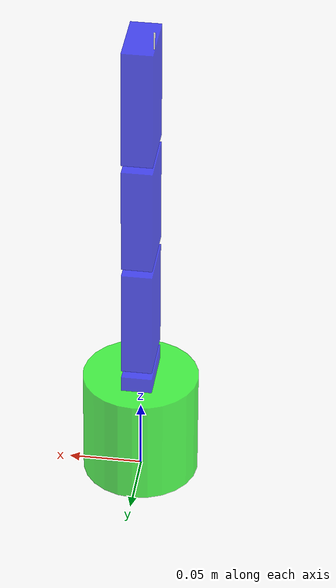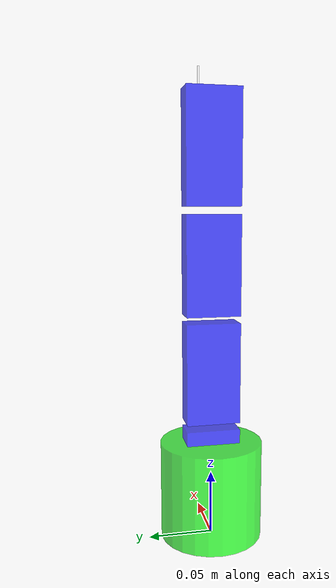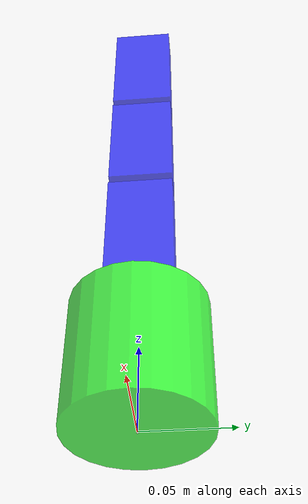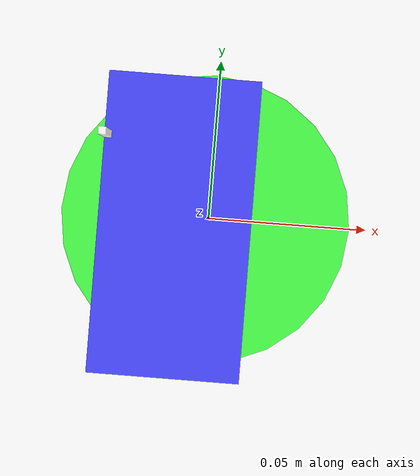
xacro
<?xml version="1.0"?>
<robot xmlns:xacro="http://www.ros.org/wiki/xacro" name="robot">
    <xacro:arg name="initial_positions_file" default="initial_positions.yaml" />

    <!-- Import robot urdf file -->
    <xacro:include filename="$(find arm_description)/description/bot_flat.urdf" />

    <!-- Import control_xacro -->
    <xacro:include filename="robot.ros2_control.xacro" />

    <xacro:robot_ros2_control name="FakeSystem" initial_positions_file="$(arg initial_positions_file)"/>

</robot>

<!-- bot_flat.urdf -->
<!-- |    This document was autogenerated by xacro from /home/kathan/Desktop/hulku_bot/src/arm_description/description/bot.urdf.xacro | -->
<!-- |    EDITING THIS FILE BY HAND IS NOT RECOMMENDED                                 | -->
<robot name="robot">
  <!-- Specify some standard inertial calculations https://en.wikipedia.org/wiki/List_of_moments_of_inertia -->
  <!-- These make use of xacro's mathematical functionality -->
  <material name="white">
    <color rgba="1 1 1 0.7"/>
  </material>
  <material name="orange">
    <color rgba="1 0.5 0 0.7"/>
  </material>
  <material name="blue">
    <color rgba="0 0 1 0.7"/>
  </material>
  <material name="green">
    <color rgba="0 1 0 0.7"/>
  </material>
  <material name="black">
    <color rgba="0 0 0 0.7"/>
  </material>
  <material name="red">
    <color rgba="1 0 0 0.7"/>
  </material>
  <!-- BASE LINK -->
  <link name="base_link">
    <visual>
      <geometry>
        <box size="0.001 0.001 0.001"/>
      </geometry>
      <material name="white"/>
    </visual>
  </link>
  <!-- base footprint -->
  <joint name="base_footprint_joint" type="fixed">
    <parent link="base_link"/>
    <child link="base_footprint"/>
    <origin rpy="0 0 0" xyz="0 0 0"/>
  </joint>
  <link name="base_footprint">
    <visual>
      <geometry>
        <box size="0.001 0.001 0.001"/>
      </geometry>
      <material name="white"/>
    </visual>
  </link>
  <!-- base cylinder -->
  <joint name="base_cylinder_joint" type="fixed">
    <parent link="base_link"/>
    <child link="base_cylinder"/>
    <origin rpy="0 0 0" xyz="0 0 0.104"/>
  </joint>
  <link name="base_cylinder">
    <visual>
      <origin rpy="0 0 0" xyz="0 0 -0.0655"/>
      <geometry>
        <cylinder length="0.077" radius="0.040"/>
      </geometry>
      <material name="green"/>
    </visual>
    <collision>
      <origin rpy="0 0 0" xyz="0 0 -0.0655"/>
      <geometry>
        <cylinder length="0.077" radius="0.040"/>
      </geometry>
      <material name="green"/>
    </collision>
    <inertial>
      <origin rpy="0 0 0" xyz="0 0 -0.0655"/>
      <mass value="0.1"/>
      <inertia ixx="8.940833333333333e-05" ixy="0.0" ixz="0.0" iyy="8.940833333333333e-05" iyz="0.0" izz="8e-05"/>
    </inertial>
  </link>
  <!-- link 1 -->
  <joint name="link_1_joint" type="revolute">
    <parent link="base_cylinder"/>
    <child link="link_1"/>
    <origin rpy="0 0 0" xyz="0 0 0"/>
    <axis xyz="0 0 1"/>
    <limit effort="100" lower="-1.5707963267948966" upper="1.5707963267948966" velocity="1"/>
  </joint>
  <link name="link_1">
    <visual>
      <origin rpy="0 0 0" xyz="0 0 -0.0215"/>
      <geometry>
        <box size="0.021 0.0415 0.011"/>
      </geometry>
      <material name="blue"/>
    </visual>
    <collision>
      <origin rpy="0 0 0" xyz="0 0 -0.0215"/>
      <geometry>
        <box size="0.021 0.0415 0.011"/>
      </geometry>
      <material name="blue"/>
    </collision>
    <inertial>
      <origin rpy="0 0 0" xyz="0 0 -0.0215"/>
      <mass value="0.1"/>
      <inertia ixx="1.536041666666667e-05" ixy="0.0" ixz="0.0" iyy="4.683333333333333e-06" iyz="0.0" izz="1.8027083333333336e-05"/>
    </inertial>
  </link>
  <!-- link 2 -->
  <joint name="link_2_joint" type="revolute">
    <parent link="link_1"/>
    <child link="link_2"/>
    <origin rpy="1.5707963267948966 -1.5707963267948966 0" xyz="0 0 0"/>
    <axis xyz="0 0 1"/>
    <limit effort="100" lower="-1.5707963267948966" upper="1.5707963267948966" velocity="1"/>
  </joint>
  <link name="link_2">
    <visual>
      <origin rpy="1.5707963267948966 0 -1.5707963267948966" xyz="0.02875 0 0"/>
      <geometry>
        <box size="0.021 0.0415 0.0785"/>
      </geometry>
      <material name="blue"/>
    </visual>
    <collision>
      <origin rpy="1.5707963267948966 0 -1.5707963267948966" xyz="0.02875 0 0"/>
      <geometry>
        <box size="0.021 0.0415 0.0785"/>
      </geometry>
      <material name="blue"/>
    </collision>
    <inertial>
      <origin rpy="1.5707963267948966 0 -1.5707963267948966" xyz="0.02875 0 0"/>
      <mass value="0.1"/>
      <inertia ixx="6.570416666666667e-05" ixy="0.0" ixz="0.0" iyy="5.502708333333334e-05" iyz="0.0" izz="1.8027083333333336e-05"/>
    </inertial>
  </link>
  <!-- link 3 -->
  <joint name="link_3_joint" type="revolute">
    <parent link="link_2"/>
    <child link="link_3"/>
    <origin rpy="0 0 0" xyz="0.084 0 0."/>
    <axis xyz="0 0 1"/>
    <limit effort="100" lower="-1.5707963267948966" upper="1.5707963267948966" velocity="1"/>
  </joint>
  <link name="link_3">
    <visual>
      <origin rpy="1.5707963267948966 0 -1.5707963267948966" xyz="0.02775 0 0"/>
      <geometry>
        <box size="0.021 0.0415 0.0765"/>
      </geometry>
      <material name="blue"/>
    </visual>
    <collision>
      <origin rpy="1.5707963267948966 0 -1.5707963267948966" xyz="0.02775 0 0"/>
      <geometry>
        <box size="0.021 0.0415 0.0765"/>
      </geometry>
      <material name="blue"/>
    </collision>
    <inertial>
      <origin rpy="1.5707963267948966 0 -1.5707963267948966" xyz="0.02775 0 0"/>
      <mass value="0.1"/>
      <inertia ixx="6.312083333333333e-05" ixy="0.0" ixz="0.0" iyy="5.2443750000000004e-05" iyz="0.0" izz="1.8027083333333336e-05"/>
    </inertial>
  </link>
  <!-- link 4 -->
  <joint name="link_4_joint" type="revolute">
    <parent link="link_3"/>
    <child link="link_4"/>
    <origin rpy="0 0 0" xyz="0.082 0 0"/>
    <axis xyz="0 0 1"/>
    <limit effort="100" lower="-1.5707963267948966" upper="1.5707963267948966" velocity="1"/>
  </joint>
  <link name="link_4">
    <visual>
      <origin rpy="1.5707963267948966 0 -1.5707963267948966" xyz="0.03175 0 0"/>
      <geometry>
        <box size="0.021 0.0415 0.0845"/>
      </geometry>
      <material name="blue"/>
    </visual>
    <collision>
      <origin rpy="1.5707963267948966 0 -1.5707963267948966" xyz="0.03175 0 0"/>
      <geometry>
        <box size="0.021 0.0415 0.0845"/>
      </geometry>
      <material name="blue"/>
    </collision>
    <inertial>
      <origin rpy="1.5707963267948966 0 -1.5707963267948966" xyz="0.03175 0 0"/>
      <mass value="0.1"/>
      <inertia ixx="7.385416666666668e-05" ixy="0.0" ixz="0.0" iyy="6.317708333333334e-05" iyz="0.0" izz="1.8027083333333336e-05"/>
    </inertial>
  </link>
  <!-- EEpin -->
  <joint name="ee_pin_joint" type="fixed">
    <parent link="link_4"/>
    <child link="ee_pin"/>
    <origin rpy="-1.5707963267948966  0 -1.5707963267948966" xyz="0.086 0.010 -0.012"/>
  </joint>
  <link name="ee_pin">
    <visual>
      <origin rpy="0 0 0" xyz="0 0 -0.006"/>
      <geometry>
        <box size="0.001 0.001 0.012"/>
      </geometry>
      <material name="white"/>
    </visual>
    <collision>
      <origin rpy="0 0 0" xyz="0 0 -0.006"/>
      <geometry>
        <box size="0.001 0.001 0.012"/>
      </geometry>
      <material name="white"/>
    </collision>
    <inertial>
      <origin rpy="0 0 0" xyz="0 0 -0.006"/>
      <mass value="0.1"/>
      <inertia ixx="1.2083333333333333e-06" ixy="0.0" ixz="0.0" iyy="1.2083333333333333e-06" iyz="0.0" izz="1.6666666666666667e-08"/>
    </inertial>
  </link>
  <!-- left-finger -->
  <!-- right-finger -->
</robot>
